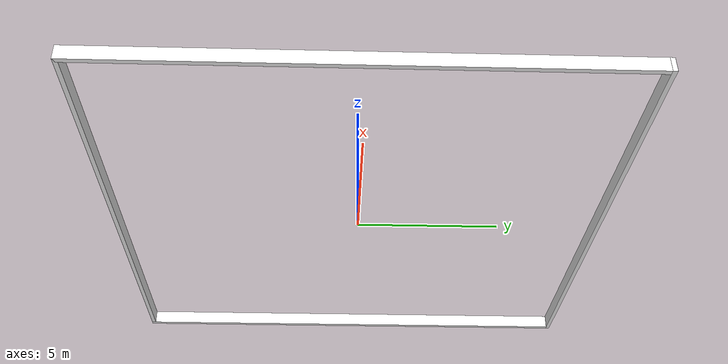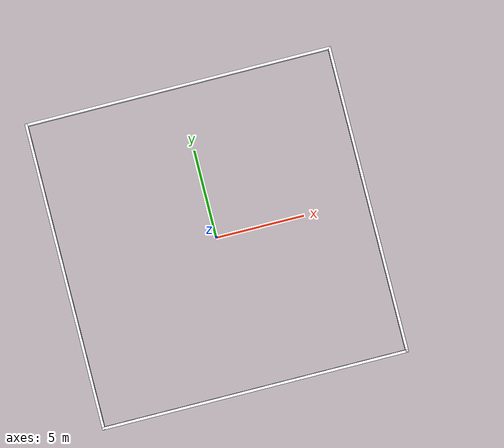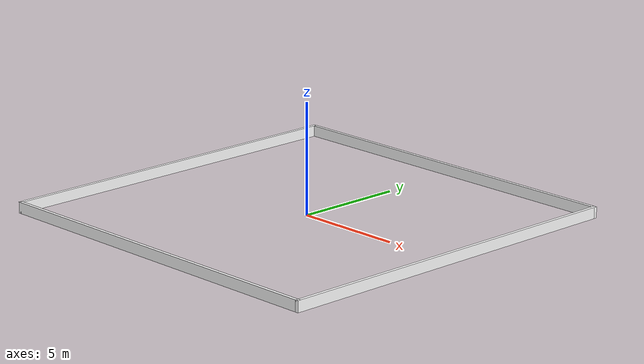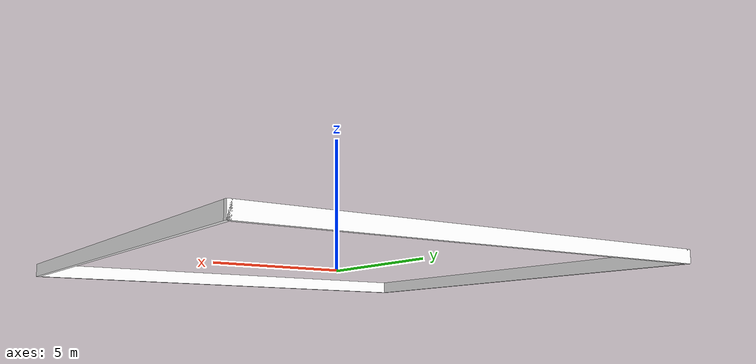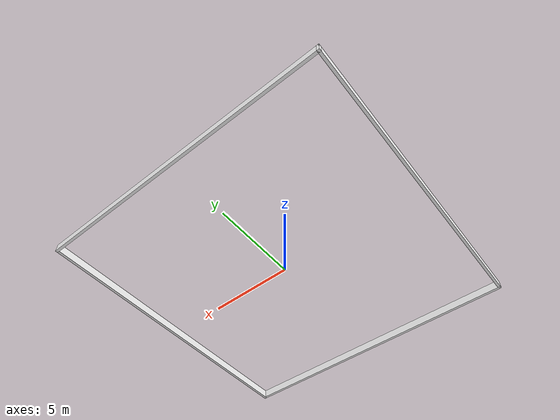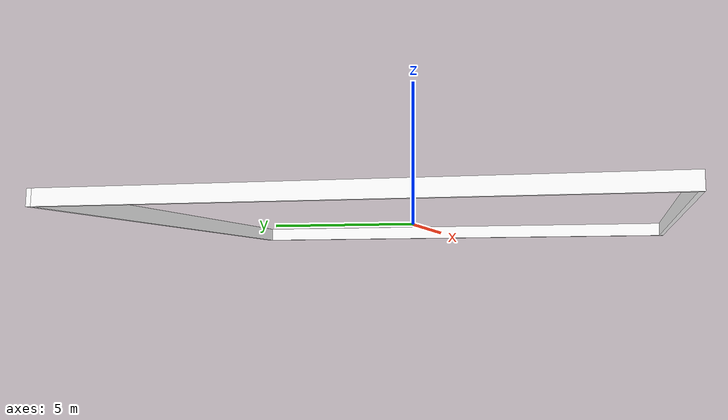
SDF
<?xml version='1.0'?>
<sdf version='1.6'>
  <model name='large'>
    <link name='fixed'>
      <self_collide>0</self_collide>
      <enable_wind>0</enable_wind>
      <kinematic>0</kinematic>
      <pose frame=''>0 0 0 0 -0 0</pose>
    </link>
    <link name='Wall_0'>
      <pose frame=''>0 8.64 0 0 -0 0</pose>
      <self_collide>0</self_collide>
      <enable_wind>0</enable_wind>
      <kinematic>0</kinematic>
      <visual name='Wall_0_Visual'>
        <pose frame=''>0 0 0.25 0 -0 0</pose>
        <geometry>
          <box>
            <size>17.43 0.15 0.5</size>
          </box>
        </geometry>
        <material>
          <ambient>1 1 1 1</ambient>
          <shader type='pixel'/>
          <script>
            <name>ModelPreview_1::Wall_0::Wall_0_Visual_MATERIAL_</name>
            <uri>__default__</uri>
          </script>
        </material>
        <transparency>0</transparency>
        <cast_shadows>1</cast_shadows>
      </visual>
      <collision name='Wall_0_Collision'>
        <laser_retro>0</laser_retro>
        <max_contacts>10</max_contacts>
        <pose frame=''>0 0 0.25 0 -0 0</pose>
        <geometry>
          <box>
            <size>17.43 0.15 0.5</size>
          </box>
        </geometry>
        <surface>
          <friction>
            <ode>
              <mu>1</mu>
              <mu2>1</mu2>
              <fdir1>0 0 0</fdir1>
              <slip1>0</slip1>
              <slip2>0</slip2>
            </ode>
            <torsional>
              <coefficient>1</coefficient>
              <patch_radius>0</patch_radius>
              <surface_radius>0</surface_radius>
              <use_patch_radius>1</use_patch_radius>
              <ode>
                <slip>0</slip>
              </ode>
            </torsional>
          </friction>
          <bounce>
            <restitution_coefficient>0</restitution_coefficient>
            <threshold>1e+06</threshold>
          </bounce>
          <contact>
            <collide_without_contact>0</collide_without_contact>
            <collide_without_contact_bitmask>1</collide_without_contact_bitmask>
            <collide_bitmask>1</collide_bitmask>
            <ode>
              <soft_cfm>0</soft_cfm>
              <soft_erp>0.2</soft_erp>
              <kp>1e+13</kp>
              <kd>1</kd>
              <max_vel>0.01</max_vel>
              <min_depth>0</min_depth>
            </ode>
            <bullet>
              <split_impulse>1</split_impulse>
              <split_impulse_penetration_threshold>-0.01</split_impulse_penetration_threshold>
              <soft_cfm>0</soft_cfm>
              <soft_erp>0.2</soft_erp>
              <kp>1e+13</kp>
              <kd>1</kd>
            </bullet>
          </contact>
        </surface>
      </collision>
    </link>
    <link name='Wall_2'>
      <pose frame=''>-8.64 0 0 0 0 -1.5708</pose>
      <self_collide>0</self_collide>
      <enable_wind>0</enable_wind>
      <kinematic>0</kinematic>
      <visual name='Wall_2_Visual'>
        <pose frame=''>0 0 0.25 0 -0 0</pose>
        <geometry>
          <box>
            <size>17.43 0.15 0.5</size>
          </box>
        </geometry>
        <material>
          <ambient>1 1 1 1</ambient>
          <shader type='pixel'/>
          <script>
            <name>ModelPreview_1::Wall_2::Wall_2_Visual_MATERIAL_</name>
            <uri>__default__</uri>
          </script>
        </material>
        <transparency>0</transparency>
        <cast_shadows>1</cast_shadows>
      </visual>
      <collision name='Wall_2_Collision'>
        <laser_retro>0</laser_retro>
        <max_contacts>10</max_contacts>
        <pose frame=''>0 0 0.25 0 -0 0</pose>
        <geometry>
          <box>
            <size>17.43 0.15 0.5</size>
          </box>
        </geometry>
        <surface>
          <friction>
            <ode>
              <mu>1</mu>
              <mu2>1</mu2>
              <fdir1>0 0 0</fdir1>
              <slip1>0</slip1>
              <slip2>0</slip2>
            </ode>
            <torsional>
              <coefficient>1</coefficient>
              <patch_radius>0</patch_radius>
              <surface_radius>0</surface_radius>
              <use_patch_radius>1</use_patch_radius>
              <ode>
                <slip>0</slip>
              </ode>
            </torsional>
          </friction>
          <bounce>
            <restitution_coefficient>0</restitution_coefficient>
            <threshold>1e+06</threshold>
          </bounce>
          <contact>
            <collide_without_contact>0</collide_without_contact>
            <collide_without_contact_bitmask>1</collide_without_contact_bitmask>
            <collide_bitmask>1</collide_bitmask>
            <ode>
              <soft_cfm>0</soft_cfm>
              <soft_erp>0.2</soft_erp>
              <kp>1e+13</kp>
              <kd>1</kd>
              <max_vel>0.01</max_vel>
              <min_depth>0</min_depth>
            </ode>
            <bullet>
              <split_impulse>1</split_impulse>
              <split_impulse_penetration_threshold>-0.01</split_impulse_penetration_threshold>
              <soft_cfm>0</soft_cfm>
              <soft_erp>0.2</soft_erp>
              <kp>1e+13</kp>
              <kd>1</kd>
            </bullet>
          </contact>
        </surface>
      </collision>
    </link>
    <link name='Wall_3'>
      <pose frame=''>0 -8.64 0 0 -0 0</pose>
      <self_collide>0</self_collide>
      <enable_wind>0</enable_wind>
      <kinematic>0</kinematic>
      <visual name='Wall_3_Visual'>
        <pose frame=''>0 0 0.25 0 -0 0</pose>
        <geometry>
          <box>
            <size>17.43 0.15 0.5</size>
          </box>
        </geometry>
        <material>
          <ambient>1 1 1 1</ambient>
          <shader type='pixel'/>
          <script>
            <name>ModelPreview_1::Wall_3::Wall_3_Visual_MATERIAL_</name>
            <uri>__default__</uri>
          </script>
        </material>
        <transparency>0</transparency>
        <cast_shadows>1</cast_shadows>
      </visual>
      <collision name='Wall_3_Collision'>
        <laser_retro>0</laser_retro>
        <max_contacts>10</max_contacts>
        <pose frame=''>0 0 0.25 0 -0 0</pose>
        <geometry>
          <box>
            <size>17.43 0.15 0.5</size>
          </box>
        </geometry>
        <surface>
          <friction>
            <ode>
              <mu>1</mu>
              <mu2>1</mu2>
              <fdir1>0 0 0</fdir1>
              <slip1>0</slip1>
              <slip2>0</slip2>
            </ode>
            <torsional>
              <coefficient>1</coefficient>
              <patch_radius>0</patch_radius>
              <surface_radius>0</surface_radius>
              <use_patch_radius>1</use_patch_radius>
              <ode>
                <slip>0</slip>
              </ode>
            </torsional>
          </friction>
          <bounce>
            <restitution_coefficient>0</restitution_coefficient>
            <threshold>1e+06</threshold>
          </bounce>
          <contact>
            <collide_without_contact>0</collide_without_contact>
            <collide_without_contact_bitmask>1</collide_without_contact_bitmask>
            <collide_bitmask>1</collide_bitmask>
            <ode>
              <soft_cfm>0</soft_cfm>
              <soft_erp>0.2</soft_erp>
              <kp>1e+13</kp>
              <kd>1</kd>
              <max_vel>0.01</max_vel>
              <min_depth>0</min_depth>
            </ode>
            <bullet>
              <split_impulse>1</split_impulse>
              <split_impulse_penetration_threshold>-0.01</split_impulse_penetration_threshold>
              <soft_cfm>0</soft_cfm>
              <soft_erp>0.2</soft_erp>
              <kp>1e+13</kp>
              <kd>1</kd>
            </bullet>
          </contact>
        </surface>
      </collision>
    </link>
    <link name='Wall_4'>
      <pose frame=''>8.64 0 0 0 -0 1.5708</pose>
      <self_collide>0</self_collide>
      <enable_wind>0</enable_wind>
      <kinematic>0</kinematic>
      <visual name='Wall_4_Visual'>
        <pose frame=''>0 0 0.25 0 -0 0</pose>
        <geometry>
          <box>
            <size>17.43 0.15 0.5</size>
          </box>
        </geometry>
        <material>
          <ambient>1 1 1 1</ambient>
          <shader type='pixel'/>
          <script>
            <name>ModelPreview_1::Wall_4::Wall_4_Visual_MATERIAL_</name>
            <uri>__default__</uri>
          </script>
        </material>
        <transparency>0</transparency>
        <cast_shadows>1</cast_shadows>
      </visual>
      <collision name='Wall_4_Collision'>
        <laser_retro>0</laser_retro>
        <max_contacts>10</max_contacts>
        <pose frame=''>0 0 0.25 0 -0 0</pose>
        <geometry>
          <box>
            <size>17.43 0.15 0.5</size>
          </box>
        </geometry>
        <surface>
          <friction>
            <ode>
              <mu>1</mu>
              <mu2>1</mu2>
              <fdir1>0 0 0</fdir1>
              <slip1>0</slip1>
              <slip2>0</slip2>
            </ode>
            <torsional>
              <coefficient>1</coefficient>
              <patch_radius>0</patch_radius>
              <surface_radius>0</surface_radius>
              <use_patch_radius>1</use_patch_radius>
              <ode>
                <slip>0</slip>
              </ode>
            </torsional>
          </friction>
          <bounce>
            <restitution_coefficient>0</restitution_coefficient>
            <threshold>1e+06</threshold>
          </bounce>
          <contact>
            <collide_without_contact>0</collide_without_contact>
            <collide_without_contact_bitmask>1</collide_without_contact_bitmask>
            <collide_bitmask>1</collide_bitmask>
            <ode>
              <soft_cfm>0</soft_cfm>
              <soft_erp>0.2</soft_erp>
              <kp>1e+13</kp>
              <kd>1</kd>
              <max_vel>0.01</max_vel>
              <min_depth>0</min_depth>
            </ode>
            <bullet>
              <split_impulse>1</split_impulse>
              <split_impulse_penetration_threshold>-0.01</split_impulse_penetration_threshold>
              <soft_cfm>0</soft_cfm>
              <soft_erp>0.2</soft_erp>
              <kp>1e+13</kp>
              <kd>1</kd>
            </bullet>
          </contact>
        </surface>
      </collision>
    </link>
    <static>1</static>
    <allow_auto_disable>1</allow_auto_disable>
  </model>
</sdf>
